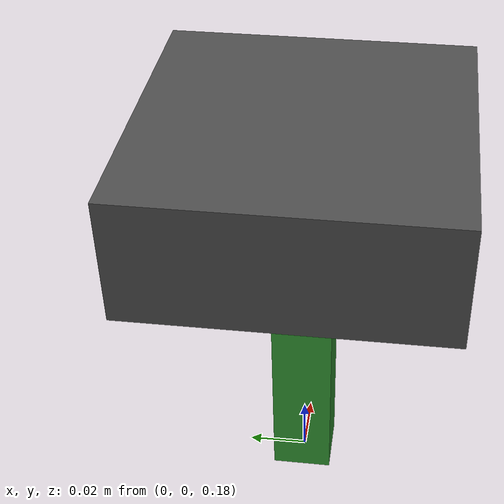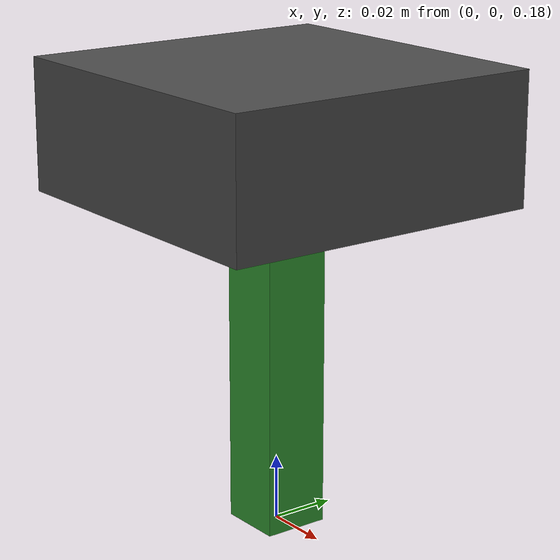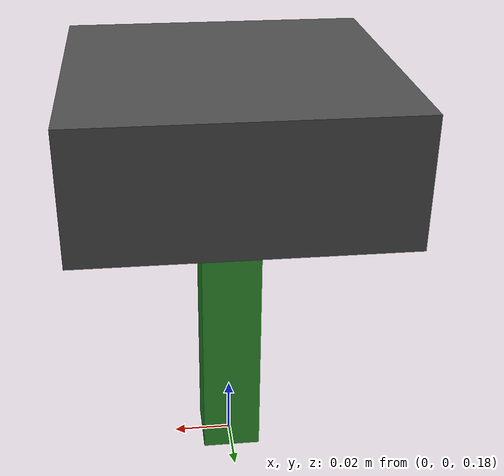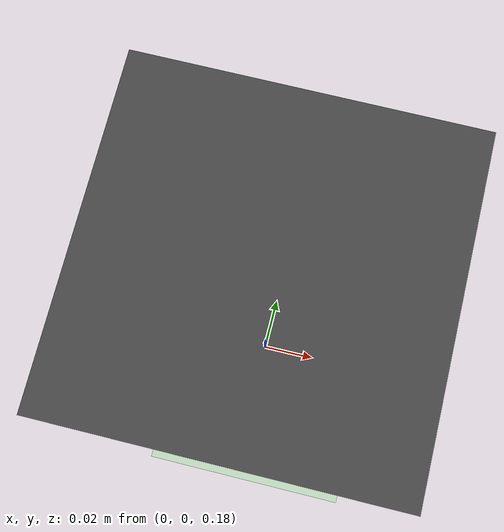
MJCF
<mujoco model="legged_robot">
  <option timestep="0.002" gravity="0 0 -9.81"/>

  <worldbody>
    <geom name="floor" type="plane" size="5 5 0.1" rgba="0.8 0.9 0.8 1"/>

    <body name="base" pos="0 0 0.3">

      <freejoint/>

      <geom type="box" size="0.05 0.05 0.02" rgba="0.3 0.3 0.3 1"/>

      <body name="leg" pos="0 0 0">
        <joint name="hip" type="hinge" axis="0 1 0" range="-30 30"/>
        <geom type="box" pos="0 0 -0.06" size="0.01 0.01 0.06" rgba="0.2 0.6 0.2 1"/>
      </body>
    </body>
  </worldbody>
</mujoco>
